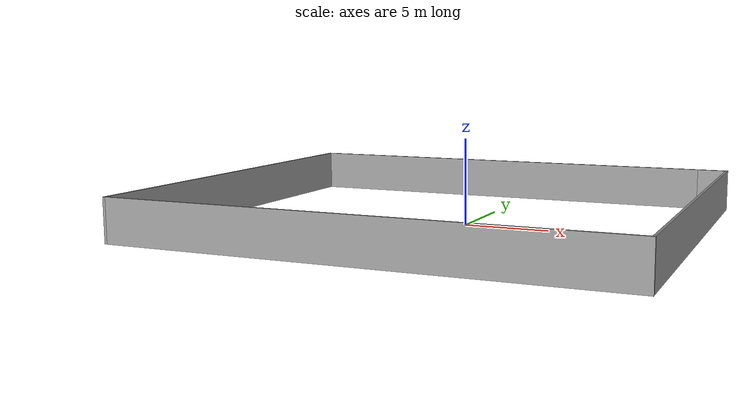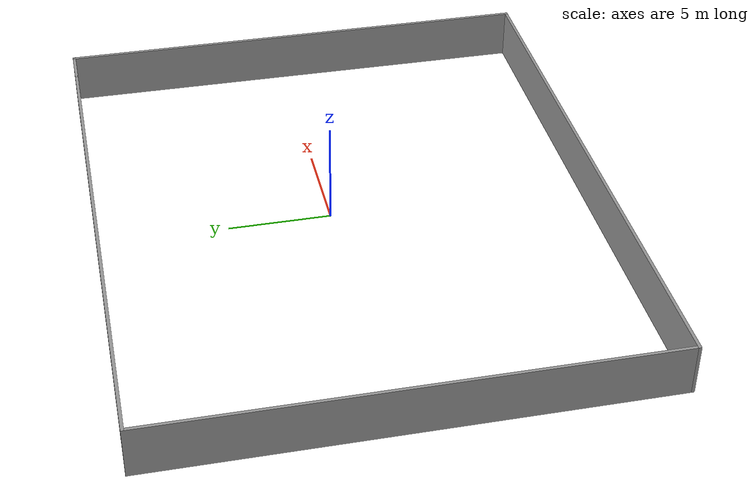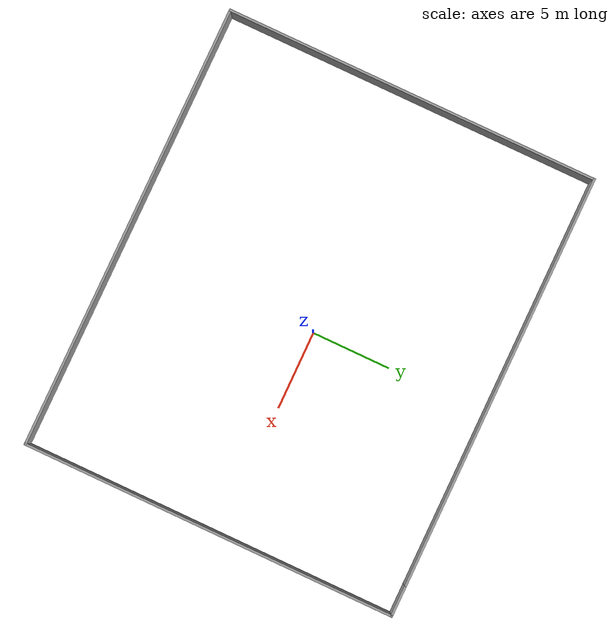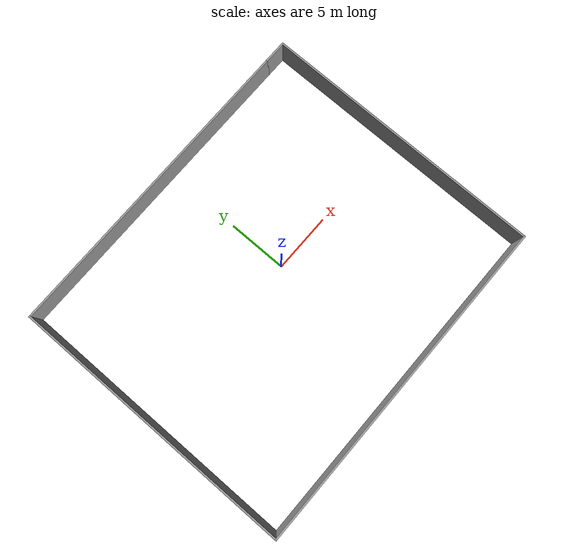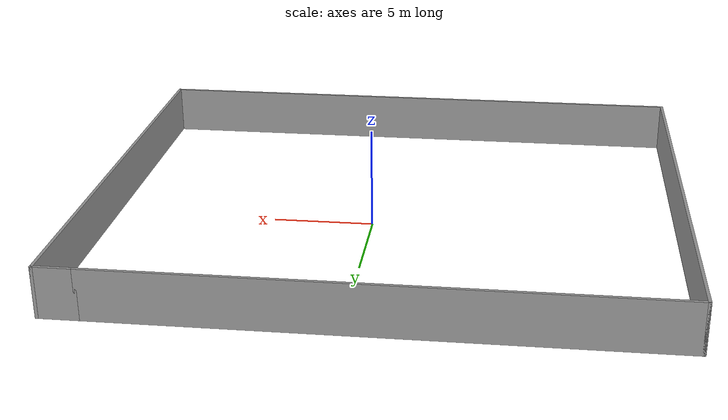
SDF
<?xml version='1.0'?>
<sdf version='1.7'>
  <model name='walls'>
    <pose>-0.98931 -0.647711 0 0 -0 0</pose>
    <link name='Wall_3'>
      <collision name='Wall_3_Collision'>
        <geometry>
          <box>
            <size>24 0.15 2.5</size>
          </box>
        </geometry>
        <pose>0 0 1.25 0 -0 0</pose>
      </collision>
      <visual name='Wall_3_Visual'>
        <pose>0 0 1.25 0 -0 0</pose>
        <geometry>
          <box>
            <size>24 0.15 2.5</size>
          </box>
        </geometry>
        <material>
          <script>
            <uri>file://media/materials/scripts/gazebo.material</uri>
            <name>Gazebo/Grey</name>
          </script>
          <ambient>1 1 1 1</ambient>
        </material>
        <meta>
          <layer>0</layer>
        </meta>
      </visual>
      <pose>-14.225 0 0 0 -0 1.5708</pose>
    </link>
    <link name='Wall_4'>
      <collision name='Wall_4_Collision'>
        <geometry>
          <box>
            <size>26.75 0.15 2.5</size>
          </box>
        </geometry>
        <pose>0 0 1.25 0 -0 0</pose>
      </collision>
      <visual name='Wall_4_Visual'>
        <pose>0 0 1.25 0 -0 0</pose>
        <geometry>
          <box>
            <size>26.75 0.15 2.5</size>
          </box>
        </geometry>
        <material>
          <script>
            <uri>file://media/materials/scripts/gazebo.material</uri>
            <name>Gazebo/Grey</name>
          </script>
          <ambient>1 1 1 1</ambient>
        </material>
        <meta>
          <layer>0</layer>
        </meta>
      </visual>
      <pose>-0.925 11.925 0 0 -0 0</pose>
    </link>
    <link name='Wall_5'>
      <collision name='Wall_5_Collision'>
        <geometry>
          <box>
            <size>2 0.15 2.5</size>
          </box>
        </geometry>
        <pose>0 0 1.25 0 -0 0</pose>
      </collision>
      <visual name='Wall_5_Visual'>
        <pose>0 0 1.25 0 -0 0</pose>
        <geometry>
          <box>
            <size>2 0.15 2.5</size>
          </box>
        </geometry>
        <material>
          <script>
            <uri>file://media/materials/scripts/gazebo.material</uri>
            <name>Gazebo/Grey</name>
          </script>
          <ambient>1 1 1 1</ambient>
        </material>
        <meta>
          <layer>0</layer>
        </meta>
      </visual>
      <pose>13.3 11.925 0 0 -0 0</pose>
    </link>
    <link name='Wall_6'>
      <collision name='Wall_6_Collision'>
        <geometry>
          <box>
            <size>24 0.15 2.5</size>
          </box>
        </geometry>
        <pose>0 0 1.25 0 -0 0</pose>
      </collision>
      <visual name='Wall_6_Visual'>
        <pose>0 0 1.25 0 -0 0</pose>
        <geometry>
          <box>
            <size>24 0.15 2.5</size>
          </box>
        </geometry>
        <material>
          <script>
            <uri>file://media/materials/scripts/gazebo.material</uri>
            <name>Gazebo/Grey</name>
          </script>
          <ambient>1 1 1 1</ambient>
        </material>
        <meta>
          <layer>0</layer>
        </meta>
      </visual>
      <pose>14.225 0 0 0 -0 -1.5708</pose>
    </link>
    <link name='Wall_7'>
      <collision name='Wall_7_Collision'>
        <geometry>
          <box>
            <size>28.6 0.15 2.5</size>
          </box>
        </geometry>
        <pose>0 0 1.25 0 -0 0</pose>
      </collision>
      <visual name='Wall_7_Visual'>
        <pose>0 0 1.25 0 -0 0</pose>
        <geometry>
          <box>
            <size>28.6 0.15 2.5</size>
          </box>
        </geometry>
        <material>
          <script>
            <uri>file://media/materials/scripts/gazebo.material</uri>
            <name>Gazebo/Grey</name>
          </script>
          <ambient>1 1 1 1</ambient>
        </material>
        <meta>
          <layer>0</layer>
        </meta>
      </visual>
      <pose>0 -11.925 0 0 -0 3.14159</pose>
    </link>
    <static>1</static>
  </model>
</sdf>
